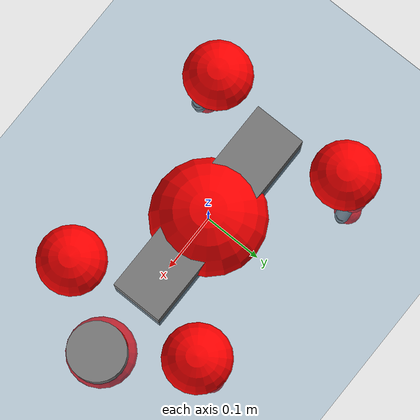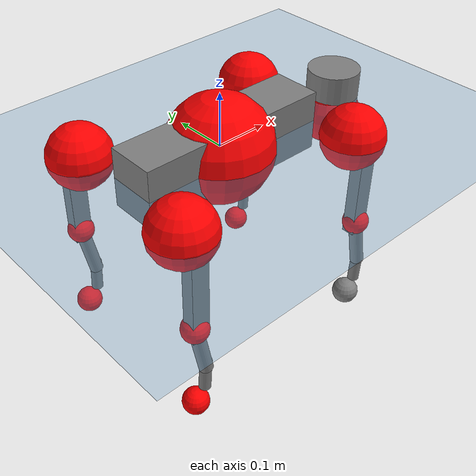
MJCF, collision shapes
<mujoco model="go2">
  <compiler angle="radian" assetdir="assets" balanceinertia="true" inertiafromgeom="false"/>

  <option timestep="0.005" density="1.2" viscosity="2e-05"/>

  <size nkey="1"/>

  <visual>
    <quality shadowsize="8192"/>
    <map shadowclip="0.5"/>
  </visual>

  <default>
    <default class="/">
      <geom contype="0" conaffinity="0" group="1" solref="-1000 -80"/>
      <site size="0.01 0.005 0.005" group="5"/>
      <general forcelimited="true" biastype="affine" gainprm="20" biasprm="0 -20 -0.5"/>
      <default class="go2">
        <joint armature="0.01" damping="0.01" frictionloss="0.2"/>
        <geom condim="1" margin="0.001"/>
        <default class="visual">
          <geom type="mesh" group="2"/>
        </default>
        <default class="collision">
          <geom group="3"/>
          <default class="foot">
            <geom size="0.022 0 0" condim="6" priority="1" friction="0.8 0.02 0.01" solimp="0.015 1 0.022"/>
          </default>
        </default>
        <default class="reward_collision_sphere">
          <geom group="5" rgba="1 0 0 1"/>
        </default>
      </default>
    </default>
  </default>

  <asset>
    <texture type="skybox" colorspace="auto" name="//unnamed_texture_0" builtin="gradient" rgb1="0.95 0.95 0.95" rgb2="0.95 0.95 0.95" width="100" height="600"/>
    <texture type="2d" colorspace="auto" name="texplane" builtin="checker" rgb1="0.345 0.575 0.748" rgb2="0.345 0.575 0.748" markrgb="1 1 1" width="512" height="512"/>
    <material name="MatPlane" class="/" texture="texplane" texuniform="true" texrepeat="2 2" specular="0.9"/>
    <material name="metal" class="/" rgba="0.9 0.95 0.95 1"/>
    <material name="black" class="/" rgba="0 0 0 1"/>
    <material name="white" class="/"/>
    <material name="gray" class="/" rgba="0.671705 0.692426 0.77427 1"/>
    <mesh name="base_0" class="/" file="base_0.obj"/>
    <mesh name="base_1" class="/" file="base_1.obj"/>
    <mesh name="base_2" class="/" file="base_2.obj"/>
    <mesh name="base_3" class="/" file="base_3.obj"/>
    <mesh name="base_4" class="/" file="base_4.obj"/>
    <mesh name="hip_0" class="/" file="hip_0.obj"/>
    <mesh name="hip_1" class="/" file="hip_1.obj"/>
    <mesh name="thigh_0" class="/" file="thigh_0.obj"/>
    <mesh name="thigh_1" class="/" file="thigh_1.obj"/>
    <mesh name="thigh_mirror_0" class="/" file="thigh_mirror_0.obj"/>
    <mesh name="thigh_mirror_1" class="/" file="thigh_mirror_1.obj"/>
    <mesh name="calf_0" class="/" file="calf_0.obj"/>
    <mesh name="calf_1" class="/" file="calf_1.obj"/>
    <mesh name="calf_mirror_0" class="/" file="calf_mirror_0.obj"/>
    <mesh name="calf_mirror_1" class="/" file="calf_mirror_1.obj"/>
    <mesh name="foot" class="/" file="foot.obj"/>
  </asset>

  <worldbody>
    <geom name="floor" class="/" size="100 100 0.125" type="plane" group="0" material="MatPlane"/>
    <light name="toplight_shadow" class="/" pos="0 0 5" dir="0.0990148 0.0990148 -0.990148" type="directional" ambient="0.04 0.04 0.04" diffuse="0.55 0.55 0.55" specular="0.12 0.12 0.12"/>
    <light name="toplight_fill" class="/" pos="0 0 5" dir="0.0990148 0.0990148 -0.990148" type="directional" castshadow="false" ambient="0.04 0.04 0.04" diffuse="0.3 0.3 0.3" specular="0.08 0.08 0.08"/>
    <body name="trunk" childclass="go2" pos="-0.00270099 -0.00215127 8.4136e-05" quat="0.999999 -0.000561781 0.000635272 -0.000991814">
      <inertial pos="0.0180418 -3.10772e-05 -0.00489325" quat="-0.00128227 0.713545 -0.00194602 0.700606" mass="6.22989" diaginertia="0.100006 0.168315 0.00882388"/>
      <joint name="//unnamed_joint_0" type="free" armature="0" damping="0" frictionloss="0"/>
      <geom name="//unnamed_geom_1" class="visual" material="black" mesh="base_0"/>
      <geom name="//unnamed_geom_2" class="visual" material="black" mesh="base_1"/>
      <geom name="//unnamed_geom_3" class="visual" material="black" mesh="base_2"/>
      <geom name="//unnamed_geom_4" class="visual" material="white" mesh="base_3"/>
      <geom name="//unnamed_geom_5" class="visual" material="gray" mesh="base_4"/>
      <geom name="trunk_1" class="collision" size="0.182613 0.0453862 0.0553372" type="box"/>
      <geom name="trunk_2" class="collision" size="0.0485414 0.0436872" pos="0.28092 0 0.00811144" type="cylinder"/>
      <geom name="trunk_3" class="collision" size="0.0456289" pos="0.288806 0 -0.0486686"/>
      <geom name="//unnamed_geom_9" class="reward_collision_sphere" size="0.0970827"/>
      <geom name="//unnamed_geom_10" class="reward_collision_sphere" size="0.0582496" pos="0.275992 0 -0.0365015"/>
      <site name="imu" pos="-0.0224412 -0.00154003 0.0388758" size="0.00970827"/>
      <camera name="track" pos="0 -2.23131 0" quat="0.707107 0.707107 0 0" mode="trackcom"/>
      <camera name="ego_camera" pos="0.307534 0 0.0365015" quat="-0.5 -0.5 0.5 0.5"/>
      <body name="FL_hip" pos="0.188665 0.0503025 0.00292137" quat="0.999999 0.00122319 -0.000244806 -3.01567e-05">
        <inertial pos="-0.00789142 0.00161663 -0.0012793" quat="0.498559 0.498493 0.504827 0.49809" mass="0.647177" diaginertia="0.000860543 0.00102877 0.000176837"/>
        <joint name="FL_hip_joint" pos="0 0 0" axis="0.999985 0.003648 -0.00416506" stiffness="0.0028113" range="-1.05267 0.993206" armature="0.0108959" damping="0" frictionloss="0.19592"/>
        <geom name="//unnamed_geom_11" class="visual" material="metal" mesh="hip_0"/>
        <geom name="//unnamed_geom_12" class="visual" material="gray" mesh="hip_1"/>
        <geom name="//unnamed_geom_13" class="collision" size="0.0446581 0.0194165" pos="0 0.0892522 0" quat="0.707107 0.707107 0 0" type="cylinder"/>
        <geom name="//unnamed_geom_14" class="reward_collision_sphere" size="0.0582496" pos="0 0.0780957 0"/>
        <body name="FL_thigh" pos="-0.000215665 0.105686 0.00276635" quat="1 -0.000278379 -0.000241287 0.000140307">
          <inertial pos="-0.00103003 -0.025203 -0.0237327" quat="0.829682 0.0854082 -0.0199277 0.551304" mass="1.06468" diaginertia="0.00553474 0.00995439 0.000308388"/>
          <joint name="FL_thigh_joint" pos="0 0 0" axis="0.00617107 0.999958 0.00671311" stiffness="0.0118157" range="-1.61955 3.54275" armature="0.0109226" damping="0" frictionloss="0.201615"/>
          <geom name="//unnamed_geom_15" class="visual" material="metal" mesh="thigh_0"/>
          <geom name="//unnamed_geom_16" class="visual" material="gray" mesh="thigh_1"/>
          <geom name="//unnamed_geom_17" class="collision" size="0.103393 0.0118926 0.0165041" pos="0 0 -0.0863868" quat="0.707107 0 0.707107 0" type="box"/>
          <body name="FL_calf" pos="0.000405451 -0.00144075 -0.173072" quat="1 0.000308957 0.000399035 -0.000687319">
            <inertial pos="0.00769414 0.000684822 -0.116884" quat="0.711674 0.0043331 0.00888024 0.70244" mass="0.218441" diaginertia="0.00139657 0.00255705 1.82045e-05"/>
            <joint name="FL_calf_joint" pos="0 0 0" axis="0.00477914 0.999986 -0.00232361" range="-2.71331 -0.890147" armature="0.00907659" damping="0" frictionloss="0.201729"/>
            <geom name="//unnamed_geom_18" class="visual" material="gray" mesh="calf_0"/>
            <geom name="//unnamed_geom_19" class="visual" material="black" mesh="calf_1"/>
            <geom name="FL_calf0" class="collision" size="0.0116499 0.0582496" pos="0.00788548 0 -0.0486686" quat="0.994493 0 -0.104807 0" type="cylinder"/>
            <geom name="//unnamed_geom_21" class="collision" size="0.0106791 0.0315519" pos="0.0197137 0 -0.120049" quat="0.999688 0 0.0249974 0" type="cylinder"/>
            <geom name="//unnamed_geom_22" class="visual" pos="0 0 -0.172774" quat="1 0 0 0" material="black" mesh="foot"/>
            <geom name="FL_foot" class="foot" size="0.0169568" pos="-0.00197137 0 -0.172774"/>
            <geom name="//unnamed_geom_24" class="reward_collision_sphere" size="0.0242707"/>
            <geom name="//unnamed_geom_25" class="reward_collision_sphere" size="0.0242707" pos="-0.00197137 0 -0.172774"/>
            <site name="FL_foot" class="foot" pos="-0.00197137 0 -0.172774" size="0.00970827"/>
          </body>
        </body>
      </body>
      <body name="FR_hip" pos="0.192023 -0.0490336 0.00010069" quat="1 4.0623e-05 9.75266e-06 0.000145926">
        <inertial pos="-0.00253003 -0.00307598 -0.000364594" quat="0.498965 0.506806 0.497624 0.496541" mass="0.65482" diaginertia="0.000853631 0.00107166 0.000169206"/>
        <joint name="FR_hip_joint" pos="0 0 0" axis="1 -0.000177554 -0.000590558" range="-1.0223 1.04494" armature="0.00845169" damping="0.0153288" frictionloss="0.220268"/>
        <geom name="//unnamed_geom_26" class="visual" pos="0 2.65275e-09 1.13782e-07" quat="4.63268e-05 1 0 0" material="metal" mesh="hip_0"/>
        <geom name="//unnamed_geom_27" class="visual" pos="0 4.30043e-09 -2.81427e-07" quat="4.63268e-05 1 0 0" material="gray" mesh="hip_1"/>
        <geom name="//unnamed_geom_28" class="collision" size="0.0446581 0.0194165" pos="0 -0.0892522 0" quat="0.707107 0.707107 0 0" type="cylinder"/>
        <geom name="//unnamed_geom_29" class="reward_collision_sphere" size="0.0582496" pos="0 -0.0780957 0"/>
        <body name="FR_thigh" pos="0.000836516 -0.105072 0.00317379" quat="0.999999 0.00124443 -0.000658033 0.000194091">
          <inertial pos="-0.00572003 0.0223894 -0.0256341" quat="0.548971 -0.0220163 0.0855477 0.83116" mass="1.02488" diaginertia="0.00555585 0.0100993 0.000299781"/>
          <joint name="FR_thigh_joint" pos="0 0 0" axis="0.00278351 -0.999995 0.00165923" stiffness="0.000641632" range="-3.47509 1.56978" armature="0.00969439" damping="0.0184469" frictionloss="0.196467"/>
          <geom name="//unnamed_geom_30" class="visual" material="metal" mesh="thigh_mirror_0"/>
          <geom name="//unnamed_geom_31" class="visual" material="gray" mesh="thigh_mirror_1"/>
          <geom name="//unnamed_geom_32" class="collision" size="0.103393 0.0118926 0.0165041" pos="0 0 -0.0863868" quat="0.707107 0 0.707107 0" type="box"/>
          <body name="FR_calf" pos="0.00170089 -0.00130733 -0.171798" quat="1 -2.23487e-05 -0.000129892 -0.000100168">
            <inertial pos="0.00724065 0.000898229 -0.11418" quat="0.704809 -0.00701214 -0.000710868 0.709362" mass="0.225468" diaginertia="0.00148087 0.00253932 1.93911e-05"/>
            <joint name="FR_calf_joint" pos="0 0 0" axis="0.000150081 -0.999943 -0.0106802" range="0.836745 2.72078" armature="0.00983501" damping="0.016478" frictionloss="0.184481"/>
            <geom name="//unnamed_geom_33" class="visual" material="gray" mesh="calf_mirror_0"/>
            <geom name="//unnamed_geom_34" class="visual" material="black" mesh="calf_mirror_1"/>
            <geom name="FR_calf0" class="collision" size="0.0126208 0.0582496" pos="0.00985685 0 -0.0486686" quat="0.995004 0 -0.0998334 0" type="cylinder"/>
            <geom name="//unnamed_geom_36" class="collision" size="0.0106791 0.0315519" pos="0.0197137 0 -0.120049" quat="0.999688 0 0.0249974 0" type="cylinder"/>
            <geom name="//unnamed_geom_37" class="visual" pos="0 0 -0.172774" quat="1 0 0 0" material="black" mesh="foot"/>
            <geom name="FR_foot" class="foot" size="0.0248345" pos="-0.00197137 0 -0.172774"/>
            <geom name="//unnamed_geom_39" class="reward_collision_sphere" size="0.0242707"/>
            <geom name="//unnamed_geom_40" class="reward_collision_sphere" size="0.0242707" pos="-0.00197137 0 -0.172774"/>
            <site name="FR_foot" class="foot" pos="-0.00197137 0 -0.172774" size="0.00970827"/>
          </body>
        </body>
      </body>
      <body name="RL_hip" pos="-0.190559 0.0518224 0.00176353" quat="0.999999 0.000886369 0.000565949 -0.000373894">
        <inertial pos="0.00821485 0.00321731 -0.000870869" quat="0.505426 0.497959 0.497315 0.499258" mass="0.615336" diaginertia="0.000827153 0.00106559 0.000171497"/>
        <joint name="RL_hip_joint" pos="0 0 0" axis="-0.999878 -0.0088388 0.0128953" stiffness="0.0079802" range="-1.02321 1.03138" armature="0.0097793" damping="0.00779495" frictionloss="0.192556"/>
        <geom name="//unnamed_geom_41" class="visual" pos="-1.52053e-09 0 -2.98059e-07" quat="4.63268e-05 0 1 0" material="metal" mesh="hip_0"/>
        <geom name="//unnamed_geom_42" class="visual" pos="-2.46496e-09 0 -2.64336e-07" quat="4.63268e-05 0 1 0" material="gray" mesh="hip_1"/>
        <geom name="//unnamed_geom_43" class="collision" size="0.0446581 0.0194165" pos="0 0.0892522 0" quat="0.707107 0.707107 0 0" type="cylinder"/>
        <geom name="//unnamed_geom_44" class="reward_collision_sphere" size="0.0582496" pos="0 0.0780957 0"/>
        <body name="RL_thigh" pos="-0.00240119 0.106905 0.00206232" quat="0.999999 0.000867237 0.000940821 0.000280692">
          <inertial pos="-0.0038195 -0.0236403 -0.025628" quat="0.824445 0.0806043 -0.0114729 0.560055" mass="1.01735" diaginertia="0.00546965 0.00976486 0.000306086"/>
          <joint name="RL_thigh_joint" pos="0 0 0" axis="0.00591281 0.999919 -0.0112551" range="-0.507826 4.53254" armature="0.00884268" damping="0" frictionloss="0.198167"/>
          <geom name="//unnamed_geom_45" class="visual" material="metal" mesh="thigh_0"/>
          <geom name="//unnamed_geom_46" class="visual" material="gray" mesh="thigh_1"/>
          <geom name="//unnamed_geom_47" class="collision" size="0.103393 0.0118926 0.0165041" pos="0 0 -0.0863868" quat="0.707107 0 0.707107 0" type="box"/>
          <body name="RL_calf" pos="-6.75573e-05 -0.00226509 -0.17171" quat="1 -1.08774e-05 7.51158e-06 3.45662e-06">
            <inertial pos="0.00605836 -0.00050597 -0.113322" quat="0.71056 0.00139036 -0.0046181 0.70362" mass="0.219377" diaginertia="0.00138993 0.00254341 1.85588e-05"/>
            <joint name="RL_calf_joint" pos="0 0 0" axis="-0.000371526 0.999997 -0.00222963" range="-2.70345 -0.834584" armature="0.00959285" damping="0" frictionloss="0.189021"/>
            <geom name="//unnamed_geom_48" class="visual" material="gray" mesh="calf_0"/>
            <geom name="//unnamed_geom_49" class="visual" material="black" mesh="calf_1"/>
            <geom name="RL_calf0" class="collision" size="0.0126208 0.0582496" pos="0.00985685 0 -0.0486686" quat="0.995004 0 -0.0998334 0" type="cylinder"/>
            <geom name="//unnamed_geom_51" class="collision" size="0.0106791 0.0315519" pos="0.0197137 0 -0.120049" quat="0.999688 0 0.0249974 0" type="cylinder"/>
            <geom name="//unnamed_geom_52" class="visual" pos="0 0 -0.172774" quat="1 0 0 0" material="black" mesh="foot"/>
            <geom name="RL_foot" class="foot" size="0.0210605" pos="-0.00197137 0 -0.172774"/>
            <geom name="//unnamed_geom_54" class="reward_collision_sphere" size="0.0242707"/>
            <geom name="//unnamed_geom_55" class="reward_collision_sphere" size="0.0242707" pos="-0.00197137 0 -0.172774"/>
            <site name="RL_foot" class="foot" pos="-0.00197137 0 -0.172774" size="0.00970827"/>
          </body>
        </body>
      </body>
      <body name="RR_hip" pos="-0.189909 -0.0542433 0.00074476" quat="0.999999 -0.000177337 0.000962229 0.000580179">
        <inertial pos="0.0051995 0.000560788 -0.000135772" quat="0.50666 0.486153 0.497283 0.509569" mass="0.616162" diaginertia="0.000832138 0.0010466 0.00016759"/>
        <joint name="RR_hip_joint" pos="0 0 0" axis="-0.999974 -0.00705097 0.0011579" stiffness="0.00770477" range="-1.06674 1.05095" armature="0.0111603" damping="0.0189626" frictionloss="0.167523"/>
        <geom name="//unnamed_geom_56" class="visual" pos="1.52503e-09 2.65275e-09 -4.11841e-07" quat="2.14617e-09 4.63268e-05 4.63268e-05 -1" material="metal" mesh="hip_0"/>
        <geom name="//unnamed_geom_57" class="visual" pos="2.45383e-09 4.30043e-09 1.70905e-08" quat="2.14617e-09 4.63268e-05 4.63268e-05 -1" material="gray" mesh="hip_1"/>
        <geom name="//unnamed_geom_58" class="collision" size="0.0446581 0.0194165" pos="0 -0.0892522 0" quat="0.707107 0.707107 0 0" type="cylinder"/>
        <geom name="//unnamed_geom_59" class="reward_collision_sphere" size="0.0582496" pos="0 -0.0780957 0"/>
        <body name="RR_thigh" pos="-0.00132865 -0.107456 -0.00306612" quat="1 -0.000550719 0.000187355 -0.000369865">
          <inertial pos="-0.00328218 0.02426 -0.0262064" quat="0.55091 -0.0204684 0.0837387 0.830101" mass="1.04835" diaginertia="0.00554358 0.0101491 0.00029881"/>
          <joint name="RR_thigh_joint" pos="0 0 0" axis="-0.000752473 -0.999991 0.00425757" range="-4.59251 0.55781" armature="0.010256" damping="0.0195503" frictionloss="0.203226"/>
          <geom name="//unnamed_geom_60" class="visual" material="metal" mesh="thigh_mirror_0"/>
          <geom name="//unnamed_geom_61" class="visual" material="gray" mesh="thigh_mirror_1"/>
          <geom name="//unnamed_geom_62" class="collision" size="0.103393 0.0118926 0.0165041" pos="0 0 -0.0863868" quat="0.707107 0 0.707107 0" type="box"/>
          <body name="RR_calf" pos="-0.00242444 0.00112219 -0.172365" quat="1 0.000370324 0.000329949 -0.000264152">
            <inertial pos="0.00847156 0.00108313 -0.11378" quat="0.703321 -0.00418261 0.0014128 0.710858" mass="0.220341" diaginertia="0.00136048 0.00237602 1.84845e-05"/>
            <joint name="RR_calf_joint" pos="0 0 0" axis="-0.00516868 -0.999949 -0.00870328" range="0.884289 2.77236" armature="0.00837363" damping="0.0103816" frictionloss="0.185183"/>
            <geom name="//unnamed_geom_63" class="visual" material="gray" mesh="calf_mirror_0"/>
            <geom name="//unnamed_geom_64" class="visual" material="black" mesh="calf_mirror_1"/>
            <geom name="RR_calf0" class="collision" size="0.0126208 0.0582496" pos="0.00985685 0 -0.0486686" quat="0.995004 0 -0.0998334 0" type="cylinder"/>
            <geom name="//unnamed_geom_66" class="collision" size="0.0106791 0.0315519" pos="0.0197137 0 -0.120049" quat="0.999688 0 0.0249974 0" type="cylinder"/>
            <geom name="//unnamed_geom_67" class="visual" pos="0 0 -0.172774" quat="1 0 0 0" material="black" mesh="foot"/>
            <geom name="RR_foot" class="foot" size="0.0231875" pos="-0.00197137 0 -0.172774"/>
            <geom name="//unnamed_geom_69" class="reward_collision_sphere" size="0.0242707"/>
            <geom name="//unnamed_geom_70" class="reward_collision_sphere" size="0.0242707" pos="-0.00197137 0 -0.172774"/>
            <site name="RR_foot" class="foot" pos="-0.00197137 0 -0.172774" size="0.00970827"/>
          </body>
        </body>
      </body>
    </body>
  </worldbody>

  <contact>
    <pair class="/" geom1="floor" geom2="FL_foot" name="//unnamed_contact_0"/>
    <pair class="/" geom1="floor" geom2="FR_foot" name="//unnamed_contact_1"/>
    <pair class="/" geom1="floor" geom2="RL_foot" name="//unnamed_contact_2"/>
    <pair class="/" geom1="floor" geom2="RR_foot" name="//unnamed_contact_3"/>
  </contact>

  <actuator>
    <general name="FL_hip" class="/" joint="FL_hip_joint" forcerange="-22.8908 22.8908" gainprm="19.5261" biasprm="0 -19.5261 -0.487602"/>
    <general name="FL_thigh" class="/" joint="FL_thigh_joint" forcerange="-22.2077 22.2077" gainprm="19.5261" biasprm="0 -19.5261 -0.487602"/>
    <general name="FL_calf" class="/" joint="FL_calf_joint" forcerange="-43.6901 43.6901" gainprm="19.5261" biasprm="0 -19.5261 -0.487602"/>
    <general name="FR_hip" class="/" joint="FR_hip_joint" forcerange="-25.1171 25.1171" gainprm="19.5261" biasprm="0 -19.5261 -0.487602"/>
    <general name="FR_thigh" class="/" joint="FR_thigh_joint" forcerange="-22.8447 22.8447" gainprm="19.5261" biasprm="0 -19.5261 -0.487602"/>
    <general name="FR_calf" class="/" joint="FR_calf_joint" forcerange="-39.8391 39.8391" gainprm="19.5261" biasprm="0 -19.5261 -0.487602"/>
    <general name="RL_hip" class="/" joint="RL_hip_joint" forcerange="-23.4 23.4" gainprm="19.5261" biasprm="0 -19.5261 -0.487602"/>
    <general name="RL_thigh" class="/" joint="RL_thigh_joint" forcerange="-23.3098 23.3098" gainprm="19.5261" biasprm="0 -19.5261 -0.487602"/>
    <general name="RL_calf" class="/" joint="RL_calf_joint" forcerange="-43.0322 43.0322" gainprm="19.5261" biasprm="0 -19.5261 -0.487602"/>
    <general name="RR_hip" class="/" joint="RR_hip_joint" forcerange="-22.4288 22.4288" gainprm="19.5261" biasprm="0 -19.5261 -0.487602"/>
    <general name="RR_thigh" class="/" joint="RR_thigh_joint" forcerange="-23.6333 23.6333" gainprm="19.5261" biasprm="0 -19.5261 -0.487602"/>
    <general name="RR_calf" class="/" joint="RR_calf_joint" forcerange="-48.7898 48.7898" gainprm="19.5261" biasprm="0 -19.5261 -0.487602"/>
  </actuator>

  <sensor>
    <gyro site="imu" name="imu_angular_velocity"/>
    <velocimeter site="imu" name="imu_linear_velocity"/>
    <framelinvel objtype="site" objname="FL_foot" name="FL_foot_global_linear_velocity"/>
    <framelinvel objtype="site" objname="FR_foot" name="FR_foot_global_linear_velocity"/>
    <framelinvel objtype="site" objname="RL_foot" name="RL_foot_global_linear_velocity"/>
    <framelinvel objtype="site" objname="RR_foot" name="RR_foot_global_linear_velocity"/>
  </sensor>

  <keyframe>
    <key name="home" qpos="0 0 0.325 1 0 0 0 0.1 0.8 -1.5 -0.1 -0.8 1.5 -0.1 0.8 -1.5 0.1 -0.8 1.5"/>
  </keyframe>
</mujoco>
